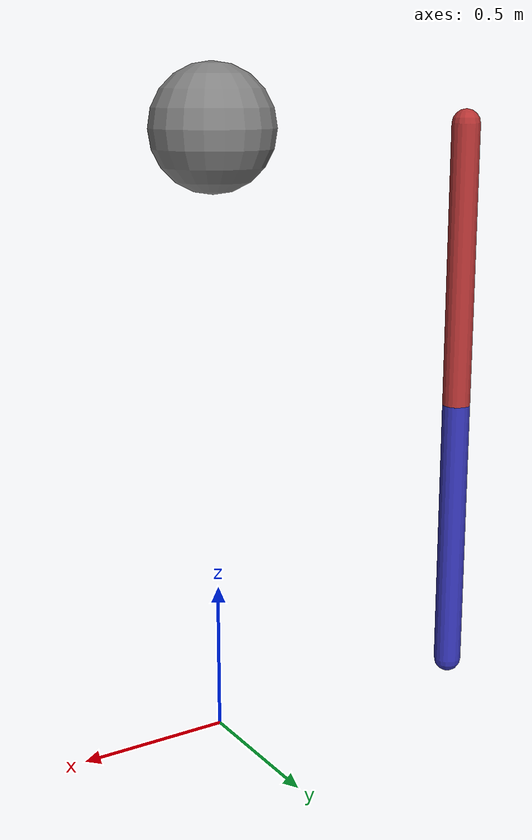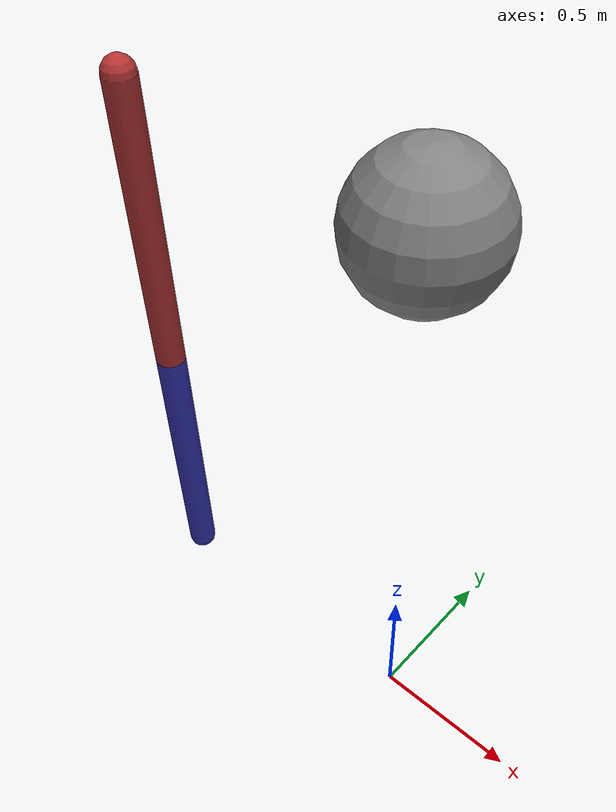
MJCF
<mujoco>
  <option gravity="0 0 -9.81" />
  <worldbody>

    <body name="object_1" pos="-1 0 2">
      <geom type="capsule" fromto="0 0 0 0 0 -1" size="0.05" rgba="0.7 0.2 0.2 1" />
      <joint name="object_1_joint" type="hinge" axis="0 1 0" />
    </body>

    <body name="object_2" pos="-1 0 1">
      <geom type="capsule" fromto="0 0 0 0 0 -1" size="0.05" rgba="0.2 0.2 0.7 1" />
      <joint name="object_2_joint" type="hinge" axis="0 1 0" />
    </body>

    <body name="object_3" pos="0 0 2">
      <geom type="sphere" size="0.2" rgba="0.5 0.5 0.5 1" />
    </body>
  </worldbody>
<joint name="joint_object_3_object_1" type="revolute" body1="object_3" body2="object_1" /><joint name="joint_object_1_object_2" type="revolute" body1="object_1" body2="object_2" /></mujoco>
